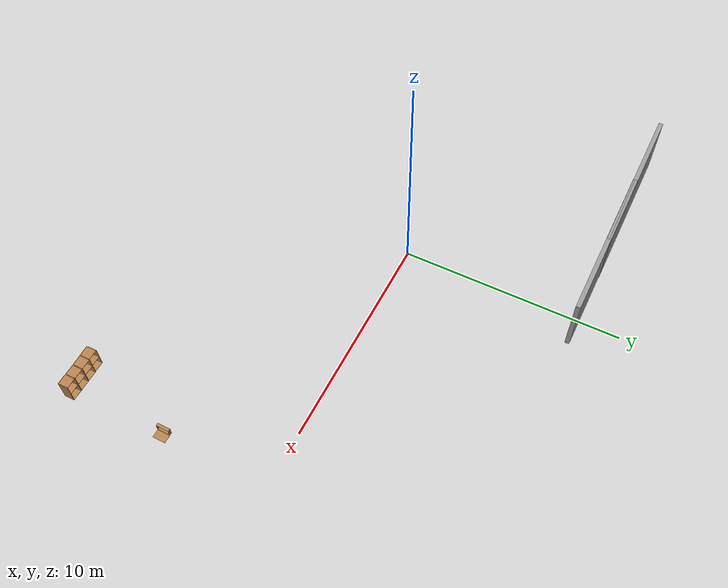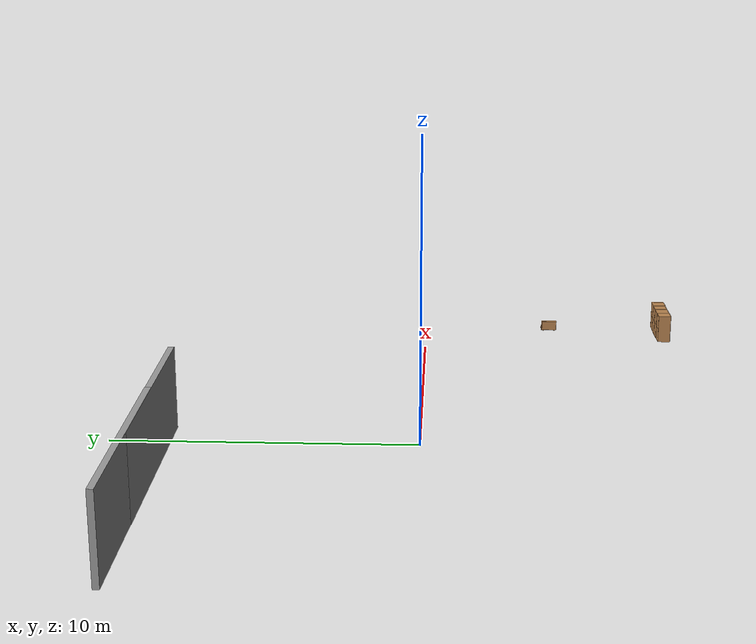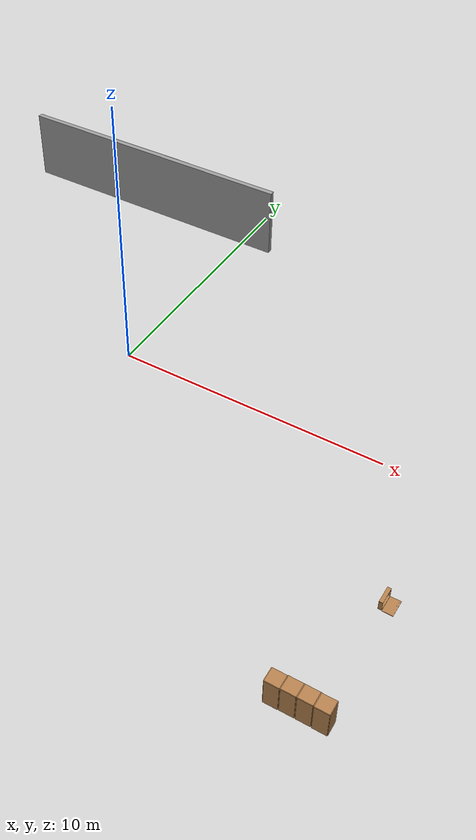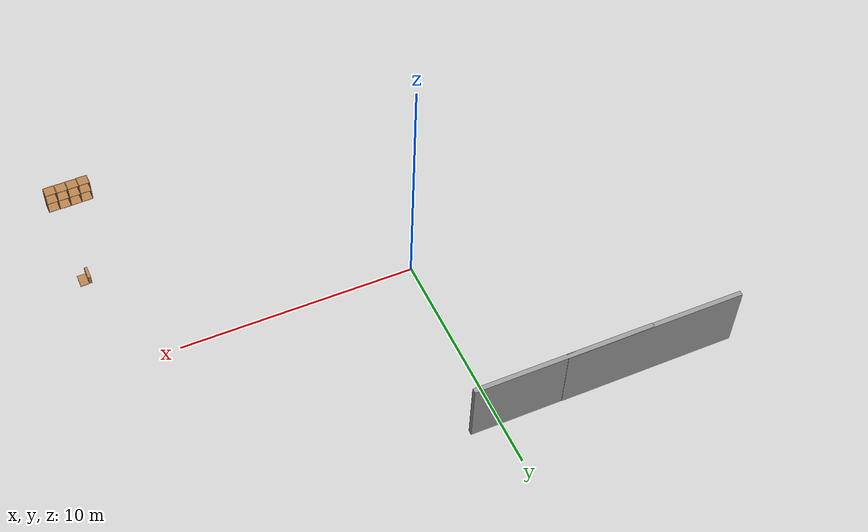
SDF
<sdf version="1.7">
 <world name="factory">
  <model name="deletion_wall">
   <static>1</static>
   <link name="sensing_link">
    <gravity>0</gravity>
    <sensor name="object_disposal_contact" type="contact">
     <update_rate>10</update_rate>
     <contact><collision>collision</collision><topic>__default_topic__</topic></contact>
    </sensor>
    <collision name="collision"><geometry><box><size>0.1 1 1</size></box></geometry></collision>
    <visual name="visual">
     <geometry><box><size>0.1 1 1</size></box></geometry>
     <cast_shadows>0</cast_shadows>
     <transparency>100</transparency>
    </visual>
   </link>
   <plugin name="object_disposal_plugin" filename="libObjectDisposalPlugin.so">
    <contact_sensor_name>object_disposal_contact</contact_sensor_name>
    <contact_side_normal>1 0 0</contact_side_normal>
    <disposal_pose>30 30 0 0 0 0</disposal_pose>
    <update_rate>5</update_rate>
   </plugin>
   <pose>0.199032 -1.08981 0 0 -0 0</pose>
  </model>
  <model name="drone_collection_zone">
   <static>1</static>
   <link name="sensing_link">
    <gravity>0</gravity>
    <sensor name="object_disposal_contact" type="contact">
     <update_rate>10</update_rate>
     <contact><collision>collision</collision><topic>__default_topic__</topic></contact>
    </sensor>
    <collision name="collision"><geometry><box><size>0.1 2 2</size></box></geometry></collision>
   </link>
   <plugin name="object_disposal_plugin" filename="libObjectDisposalPlugin.so">
    <contact_sensor_name>object_disposal_contact</contact_sensor_name>
    <contacting_box_topic>/ariac/waiting_shipping_box</contacting_box_topic>
    <activation_topic>/ariac/drone_collection_zone/activate_deletion</activation_topic>
    <contact_side_normal>1 0 0</contact_side_normal>
    <disposal_pose>-7.5 -10 -0.5 0 0 0</disposal_pose>
    <update_rate>5</update_rate>
   </plugin>
   <pose>-0.093674 -2.00167 0 0 -0 0</pose>
  </model>
  <model name="grey_wall">
   <static>1</static>
   <link name="link">
    <pose>0 0 1.4 0 -0 0</pose>
    <collision name="collision"><geometry><box><size>7.5 0.2 2.8</size></box></geometry></collision>
    <visual name="visual">
     <cast_shadows>0</cast_shadows>
     <geometry><box><size>7.5 0.2 2.8</size></box></geometry>
     <material>
      <script>
       <uri>model://grey_wall/materials/scripts</uri>
       <uri>model://grey_wall/materials/textures</uri>
       <name>vrc/grey_wall</name>
      </script>
     </material>
    </visual>
   </link>
   <static>1</static>
   <pose>-6.34942 8.1136 0 0 -0 0</pose>
  </model>
  <model name="grey_wall_clone">
   <static>1</static>
   <link name="link">
    <pose>0 0 1.4 0 -0 0</pose>
    <collision name="collision"><geometry><box><size>7.5 0.2 2.8</size></box></geometry></collision>
    <visual name="visual">
     <cast_shadows>0</cast_shadows>
     <geometry><box><size>7.5 0.2 2.8</size></box></geometry>
     <material>
      <script>
       <uri>model://grey_wall/materials/scripts</uri>
       <uri>model://grey_wall/materials/textures</uri>
       <name>vrc/grey_wall</name>
      </script>
     </material>
    </visual>
   </link>
   <static>1</static>
   <pose>-2.50623 8.09985 0 0 -0 0</pose>
  </model>
  <model name="cabinet_clone">
   <static>1</static>
   <link name="cabinet_bottom_plate">
    <inertial>
     <pose>0 0 -1 0 -0 0</pose>
     <inertia><ixx>2.05</ixx><ixy>0</ixy><ixz>0</ixz><iyy>2.05</iyy><iyz>0</iyz><izz>2.05</izz></inertia>
     <mass>25</mass>
    </inertial>
    <collision name="cabinet_bottom_plate_geom">
     <pose>0 0 0.01 0 -0 0</pose>
     <geometry><box><size>0.45 0.45 0.02</size></box></geometry>
    </collision>
    <visual name="cabinet_bottom_plate_geom_visual">
     <pose>0 0 0.01 0 -0 0</pose>
     <geometry><box><size>0.45 0.45 0.02</size></box></geometry>
     <material>
      <script>
       <uri>file:///usr/share/gazebo-11/media/materials/scripts/gazebo.material</uri>
       <name>Gazebo/Wood</name>
      </script>
     </material>
    </visual>
    <collision name="cabinet_bottom_plate_geom_cabinet_back_plate">
     <pose>0.235 0 0.51 0 -0 0</pose>
     <geometry><box><size>0.02 0.45 1.02</size></box></geometry>
    </collision>
    <visual name="cabinet_bottom_plate_geom_cabinet_back_plate_visual">
     <pose>0.235 0 0.51 0 -0 0</pose>
     <geometry><box><size>0.02 0.45 1.02</size></box></geometry>
     <material>
      <script>
       <uri>file:///usr/share/gazebo-11/media/materials/scripts/gazebo.material</uri>
       <name>Gazebo/Wood</name>
      </script>
     </material>
    </visual>
    <collision name="cabinet_bottom_plate_geom_cabinet_left_plate">
     <pose>0 0.235 0.51 0 -0 0</pose>
     <geometry><box><size>0.45 0.02 1.02</size></box></geometry>
    </collision>
    <visual name="cabinet_bottom_plate_geom_cabinet_left_plate_visual">
     <pose>0 0.235 0.51 0 -0 0</pose>
     <geometry><box><size>0.45 0.02 1.02</size></box></geometry>
     <material>
      <script>
       <uri>file:///usr/share/gazebo-11/media/materials/scripts/gazebo.material</uri>
       <name>Gazebo/Wood</name>
      </script>
     </material>
    </visual>
    <collision name="cabinet_bottom_plate_geom_cabinet_middle_plate">
     <pose>0 0 0.51 0 -0 0</pose>
     <geometry><box><size>0.45 0.45 0.02</size></box></geometry>
    </collision>
    <visual name="cabinet_bottom_plate_geom_cabinet_middle_plate_visual">
     <pose>0 0 0.51 0 -0 0</pose>
     <geometry><box><size>0.45 0.45 0.02</size></box></geometry>
     <material>
      <script>
       <uri>file:///usr/share/gazebo-11/media/materials/scripts/gazebo.material</uri>
       <name>Gazebo/Wood</name>
      </script>
     </material>
    </visual>
    <collision name="cabinet_bottom_plate_geom_cabinet_right_plate">
     <pose>0 -0.235 0.51 0 -0 0</pose>
     <geometry><box><size>0.45 0.02 1.02</size></box></geometry>
    </collision>
    <visual name="cabinet_bottom_plate_geom_cabinet_right_plate_visual">
     <pose>0 -0.235 0.51 0 -0 0</pose>
     <geometry><box><size>0.45 0.02 1.02</size></box></geometry>
     <material>
      <script>
       <uri>file:///usr/share/gazebo-11/media/materials/scripts/gazebo.material</uri>
       <name>Gazebo/Wood</name>
      </script>
     </material>
    </visual>
    <collision name="cabinet_bottom_plate_geom_cabinet_top_plate">
     <pose>0 0 1.01 0 -0 0</pose>
     <geometry><box><size>0.45 0.45 0.02</size></box></geometry>
    </collision>
    <visual name="cabinet_bottom_plate_geom_cabinet_top_plate_visual">
     <pose>0 0 1.01 0 -0 0</pose>
     <geometry><box><size>0.45 0.45 0.02</size></box></geometry>
     <material>
      <script>
       <uri>file:///usr/share/gazebo-11/media/materials/scripts/gazebo.material</uri>
       <name>Gazebo/Wood</name>
      </script>
     </material>
    </visual>
   </link>
   <static>1</static>
   <pose>12.5585 -9.14446 0.037072 0 0 -1.55676</pose>
  </model>
  <model name="cabinet_clone_0">
   <static>1</static>
   <link name="cabinet_bottom_plate">
    <inertial>
     <pose>0 0 -1 0 -0 0</pose>
     <inertia><ixx>2.05</ixx><ixy>0</ixy><ixz>0</ixz><iyy>2.05</iyy><iyz>0</iyz><izz>2.05</izz></inertia>
     <mass>25</mass>
    </inertial>
    <collision name="cabinet_bottom_plate_geom">
     <pose>0 0 0.01 0 -0 0</pose>
     <geometry><box><size>0.45 0.45 0.02</size></box></geometry>
    </collision>
    <visual name="cabinet_bottom_plate_geom_visual">
     <pose>0 0 0.01 0 -0 0</pose>
     <geometry><box><size>0.45 0.45 0.02</size></box></geometry>
     <material>
      <script>
       <uri>file:///usr/share/gazebo-11/media/materials/scripts/gazebo.material</uri>
       <name>Gazebo/Wood</name>
      </script>
     </material>
    </visual>
    <collision name="cabinet_bottom_plate_geom_cabinet_back_plate">
     <pose>0.235 0 0.51 0 -0 0</pose>
     <geometry><box><size>0.02 0.45 1.02</size></box></geometry>
    </collision>
    <visual name="cabinet_bottom_plate_geom_cabinet_back_plate_visual">
     <pose>0.235 0 0.51 0 -0 0</pose>
     <geometry><box><size>0.02 0.45 1.02</size></box></geometry>
     <material>
      <script>
       <uri>file:///usr/share/gazebo-11/media/materials/scripts/gazebo.material</uri>
       <name>Gazebo/Wood</name>
      </script>
     </material>
    </visual>
    <collision name="cabinet_bottom_plate_geom_cabinet_left_plate">
     <pose>0 0.235 0.51 0 -0 0</pose>
     <geometry><box><size>0.45 0.02 1.02</size></box></geometry>
    </collision>
    <visual name="cabinet_bottom_plate_geom_cabinet_left_plate_visual">
     <pose>0 0.235 0.51 0 -0 0</pose>
     <geometry><box><size>0.45 0.02 1.02</size></box></geometry>
     <material>
      <script>
       <uri>file:///usr/share/gazebo-11/media/materials/scripts/gazebo.material</uri>
       <name>Gazebo/Wood</name>
      </script>
     </material>
    </visual>
    <collision name="cabinet_bottom_plate_geom_cabinet_middle_plate">
     <pose>0 0 0.51 0 -0 0</pose>
     <geometry><box><size>0.45 0.45 0.02</size></box></geometry>
    </collision>
    <visual name="cabinet_bottom_plate_geom_cabinet_middle_plate_visual">
     <pose>0 0 0.51 0 -0 0</pose>
     <geometry><box><size>0.45 0.45 0.02</size></box></geometry>
     <material>
      <script>
       <uri>file:///usr/share/gazebo-11/media/materials/scripts/gazebo.material</uri>
       <name>Gazebo/Wood</name>
      </script>
     </material>
    </visual>
    <collision name="cabinet_bottom_plate_geom_cabinet_right_plate">
     <pose>0 -0.235 0.51 0 -0 0</pose>
     <geometry><box><size>0.45 0.02 1.02</size></box></geometry>
    </collision>
    <visual name="cabinet_bottom_plate_geom_cabinet_right_plate_visual">
     <pose>0 -0.235 0.51 0 -0 0</pose>
     <geometry><box><size>0.45 0.02 1.02</size></box></geometry>
     <material>
      <script>
       <uri>file:///usr/share/gazebo-11/media/materials/scripts/gazebo.material</uri>
       <name>Gazebo/Wood</name>
      </script>
     </material>
    </visual>
    <collision name="cabinet_bottom_plate_geom_cabinet_top_plate">
     <pose>0 0 1.01 0 -0 0</pose>
     <geometry><box><size>0.45 0.45 0.02</size></box></geometry>
    </collision>
    <visual name="cabinet_bottom_plate_geom_cabinet_top_plate_visual">
     <pose>0 0 1.01 0 -0 0</pose>
     <geometry><box><size>0.45 0.45 0.02</size></box></geometry>
     <material>
      <script>
       <uri>file:///usr/share/gazebo-11/media/materials/scripts/gazebo.material</uri>
       <name>Gazebo/Wood</name>
      </script>
     </material>
    </visual>
   </link>
   <static>1</static>
   <pose>12.0748 -9.14339 0.037072 0 0 -1.55676</pose>
  </model>
  <model name="cabinet_clone_1">
   <static>1</static>
   <link name="cabinet_bottom_plate">
    <inertial>
     <pose>0 0 -1 0 -0 0</pose>
     <inertia><ixx>2.05</ixx><ixy>0</ixy><ixz>0</ixz><iyy>2.05</iyy><iyz>0</iyz><izz>2.05</izz></inertia>
     <mass>25</mass>
    </inertial>
    <collision name="cabinet_bottom_plate_geom">
     <pose>0 0 0.01 0 -0 0</pose>
     <geometry><box><size>0.45 0.45 0.02</size></box></geometry>
    </collision>
    <visual name="cabinet_bottom_plate_geom_visual">
     <pose>0 0 0.01 0 -0 0</pose>
     <geometry><box><size>0.45 0.45 0.02</size></box></geometry>
     <material>
      <script>
       <uri>file:///usr/share/gazebo-11/media/materials/scripts/gazebo.material</uri>
       <name>Gazebo/Wood</name>
      </script>
     </material>
    </visual>
    <collision name="cabinet_bottom_plate_geom_cabinet_back_plate">
     <pose>0.235 0 0.51 0 -0 0</pose>
     <geometry><box><size>0.02 0.45 1.02</size></box></geometry>
    </collision>
    <visual name="cabinet_bottom_plate_geom_cabinet_back_plate_visual">
     <pose>0.235 0 0.51 0 -0 0</pose>
     <geometry><box><size>0.02 0.45 1.02</size></box></geometry>
     <material>
      <script>
       <uri>file:///usr/share/gazebo-11/media/materials/scripts/gazebo.material</uri>
       <name>Gazebo/Wood</name>
      </script>
     </material>
    </visual>
    <collision name="cabinet_bottom_plate_geom_cabinet_left_plate">
     <pose>0 0.235 0.51 0 -0 0</pose>
     <geometry><box><size>0.45 0.02 1.02</size></box></geometry>
    </collision>
    <visual name="cabinet_bottom_plate_geom_cabinet_left_plate_visual">
     <pose>0 0.235 0.51 0 -0 0</pose>
     <geometry><box><size>0.45 0.02 1.02</size></box></geometry>
     <material>
      <script>
       <uri>file:///usr/share/gazebo-11/media/materials/scripts/gazebo.material</uri>
       <name>Gazebo/Wood</name>
      </script>
     </material>
    </visual>
    <collision name="cabinet_bottom_plate_geom_cabinet_middle_plate">
     <pose>0 0 0.51 0 -0 0</pose>
     <geometry><box><size>0.45 0.45 0.02</size></box></geometry>
    </collision>
    <visual name="cabinet_bottom_plate_geom_cabinet_middle_plate_visual">
     <pose>0 0 0.51 0 -0 0</pose>
     <geometry><box><size>0.45 0.45 0.02</size></box></geometry>
     <material>
      <script>
       <uri>file:///usr/share/gazebo-11/media/materials/scripts/gazebo.material</uri>
       <name>Gazebo/Wood</name>
      </script>
     </material>
    </visual>
    <collision name="cabinet_bottom_plate_geom_cabinet_right_plate">
     <pose>0 -0.235 0.51 0 -0 0</pose>
     <geometry><box><size>0.45 0.02 1.02</size></box></geometry>
    </collision>
    <visual name="cabinet_bottom_plate_geom_cabinet_right_plate_visual">
     <pose>0 -0.235 0.51 0 -0 0</pose>
     <geometry><box><size>0.45 0.02 1.02</size></box></geometry>
     <material>
      <script>
       <uri>file:///usr/share/gazebo-11/media/materials/scripts/gazebo.material</uri>
       <name>Gazebo/Wood</name>
      </script>
     </material>
    </visual>
    <collision name="cabinet_bottom_plate_geom_cabinet_top_plate">
     <pose>0 0 1.01 0 -0 0</pose>
     <geometry><box><size>0.45 0.45 0.02</size></box></geometry>
    </collision>
    <visual name="cabinet_bottom_plate_geom_cabinet_top_plate_visual">
     <pose>0 0 1.01 0 -0 0</pose>
     <geometry><box><size>0.45 0.45 0.02</size></box></geometry>
     <material>
      <script>
       <uri>file:///usr/share/gazebo-11/media/materials/scripts/gazebo.material</uri>
       <name>Gazebo/Wood</name>
      </script>
     </material>
    </visual>
   </link>
   <static>1</static>
   <pose>11.5886 -9.15198 0.037072 0 0 -1.55676</pose>
  </model>
  <model name="cabinet_clone_2">
   <static>1</static>
   <link name="cabinet_bottom_plate">
    <inertial>
     <pose>0 0 -1 0 -0 0</pose>
     <inertia><ixx>2.05</ixx><ixy>0</ixy><ixz>0</ixz><iyy>2.05</iyy><iyz>0</iyz><izz>2.05</izz></inertia>
     <mass>25</mass>
    </inertial>
    <collision name="cabinet_bottom_plate_geom">
     <pose>0 0 0.01 0 -0 0</pose>
     <geometry><box><size>0.45 0.45 0.02</size></box></geometry>
    </collision>
    <visual name="cabinet_bottom_plate_geom_visual">
     <pose>0 0 0.01 0 -0 0</pose>
     <geometry><box><size>0.45 0.45 0.02</size></box></geometry>
     <material>
      <script>
       <uri>file:///usr/share/gazebo-11/media/materials/scripts/gazebo.material</uri>
       <name>Gazebo/Wood</name>
      </script>
     </material>
    </visual>
    <collision name="cabinet_bottom_plate_geom_cabinet_back_plate">
     <pose>0.235 0 0.51 0 -0 0</pose>
     <geometry><box><size>0.02 0.45 1.02</size></box></geometry>
    </collision>
    <visual name="cabinet_bottom_plate_geom_cabinet_back_plate_visual">
     <pose>0.235 0 0.51 0 -0 0</pose>
     <geometry><box><size>0.02 0.45 1.02</size></box></geometry>
     <material>
      <script>
       <uri>file:///usr/share/gazebo-11/media/materials/scripts/gazebo.material</uri>
       <name>Gazebo/Wood</name>
      </script>
     </material>
    </visual>
    <collision name="cabinet_bottom_plate_geom_cabinet_left_plate">
     <pose>0 0.235 0.51 0 -0 0</pose>
     <geometry><box><size>0.45 0.02 1.02</size></box></geometry>
    </collision>
    <visual name="cabinet_bottom_plate_geom_cabinet_left_plate_visual">
     <pose>0 0.235 0.51 0 -0 0</pose>
     <geometry><box><size>0.45 0.02 1.02</size></box></geometry>
     <material>
      <script>
       <uri>file:///usr/share/gazebo-11/media/materials/scripts/gazebo.material</uri>
       <name>Gazebo/Wood</name>
      </script>
     </material>
    </visual>
    <collision name="cabinet_bottom_plate_geom_cabinet_middle_plate">
     <pose>0 0 0.51 0 -0 0</pose>
     <geometry><box><size>0.45 0.45 0.02</size></box></geometry>
    </collision>
    <visual name="cabinet_bottom_plate_geom_cabinet_middle_plate_visual">
     <pose>0 0 0.51 0 -0 0</pose>
     <geometry><box><size>0.45 0.45 0.02</size></box></geometry>
     <material>
      <script>
       <uri>file:///usr/share/gazebo-11/media/materials/scripts/gazebo.material</uri>
       <name>Gazebo/Wood</name>
      </script>
     </material>
    </visual>
    <collision name="cabinet_bottom_plate_geom_cabinet_right_plate">
     <pose>0 -0.235 0.51 0 -0 0</pose>
     <geometry><box><size>0.45 0.02 1.02</size></box></geometry>
    </collision>
    <visual name="cabinet_bottom_plate_geom_cabinet_right_plate_visual">
     <pose>0 -0.235 0.51 0 -0 0</pose>
     <geometry><box><size>0.45 0.02 1.02</size></box></geometry>
     <material>
      <script>
       <uri>file:///usr/share/gazebo-11/media/materials/scripts/gazebo.material</uri>
       <name>Gazebo/Wood</name>
      </script>
     </material>
    </visual>
    <collision name="cabinet_bottom_plate_geom_cabinet_top_plate">
     <pose>0 0 1.01 0 -0 0</pose>
     <geometry><box><size>0.45 0.45 0.02</size></box></geometry>
    </collision>
    <visual name="cabinet_bottom_plate_geom_cabinet_top_plate_visual">
     <pose>0 0 1.01 0 -0 0</pose>
     <geometry><box><size>0.45 0.45 0.02</size></box></geometry>
     <material>
      <script>
       <uri>file:///usr/share/gazebo-11/media/materials/scripts/gazebo.material</uri>
       <name>Gazebo/Wood</name>
      </script>
     </material>
    </visual>
   </link>
   <static>1</static>
   <pose>11.1088 -9.16946 0.037072 0 0 -1.55676</pose>
  </model>
  <model name="wooden_case_clone">
   <link name="base">
    <pose>0 0 0.024 0 -0 0</pose>
    <inertial>
     <pose>-0.022184 0 0.171592 0 -0 0</pose>
     <mass>3.96264</mass>
     <inertia>
      <ixx>0.213536</ixx>
      <ixy>0</ixy>
      <ixz>0.000779377</ixz>
      <iyy>0.0708943</iyy>
      <iyz>0</iyz>
      <izz>0.154604</izz>
     </inertia>
    </inertial>
    <collision name="collision_back">
     <pose>-0.053975 0 0.1778 0 -0 0</pose>
     <geometry><box><size>0.01905 0.5461 0.3175</size></box></geometry>
     <surface>
      <contact>
       <poissons_ratio>0.347</poissons_ratio>
       <elastic_modulus>8.8e+09</elastic_modulus>
       <ode><kp>100000</kp><kd>100</kd><max_vel>100</max_vel><min_depth>0.001</min_depth></ode>
      </contact>
      <friction>
       <torsional>
        <coefficient>1</coefficient>
        <use_patch_radius>0</use_patch_radius>
        <surface_radius>0.01</surface_radius>
       </torsional>
      </friction>
     </surface>
    </collision>
    <visual name="visual_back">
     <pose>-0.053975 0 0.1778 0 -0 0</pose>
     <geometry><box><size>0.01905 0.5461 0.3175</size></box></geometry>
     <material>
      <script>
       <uri>file:///usr/share/gazebo-11/media/materials/scripts/gazebo.material</uri>
       <name>Gazebo/Wood</name>
      </script>
     </material>
    </visual>
    <collision name="collision_bottom">
     <pose>0 0 0.009525 0 -0 0</pose>
     <geometry><box><size>0.127 0.5842 0.01905</size></box></geometry>
     <surface>
      <contact>
       <poissons_ratio>0.347</poissons_ratio>
       <elastic_modulus>8.8e+09</elastic_modulus>
       <ode><kp>100000</kp><kd>100</kd><max_vel>100</max_vel><min_depth>0.001</min_depth></ode>
      </contact>
      <friction>
       <torsional>
        <coefficient>1</coefficient>
        <use_patch_radius>0</use_patch_radius>
        <surface_radius>0.01</surface_radius>
       </torsional>
      </friction>
     </surface>
    </collision>
    <visual name="visual_bottom">
     <pose>0 0 0.009525 0 -0 0</pose>
     <geometry><box><size>0.127 0.5842 0.01905</size></box></geometry>
     <material>
      <script>
       <uri>file:///usr/share/gazebo-11/media/materials/scripts/gazebo.material</uri>
       <name>Gazebo/Wood</name>
      </script>
     </material>
    </visual>
    <collision name="collision_top">
     <pose>0 0 0.346075 0 -0 0</pose>
     <geometry><box><size>0.127 0.5842 0.01905</size></box></geometry>
     <surface>
      <contact>
       <poissons_ratio>0.347</poissons_ratio>
       <elastic_modulus>8.8e+09</elastic_modulus>
       <ode><kp>100000</kp><kd>100</kd><max_vel>100</max_vel><min_depth>0.001</min_depth></ode>
      </contact>
      <friction>
       <torsional>
        <coefficient>1</coefficient>
        <use_patch_radius>0</use_patch_radius>
        <surface_radius>0.01</surface_radius>
       </torsional>
      </friction>
     </surface>
    </collision>
    <visual name="visual_top">
     <pose>0 0 0.346075 0 -0 0</pose>
     <geometry><box><size>0.127 0.5842 0.01905</size></box></geometry>
     <material>
      <script>
       <uri>file:///usr/share/gazebo-11/media/materials/scripts/gazebo.material</uri>
       <name>Gazebo/Wood</name>
      </script>
     </material>
    </visual>
    <collision name="collision_left">
     <pose>0 -0.282575 0.1778 0 -0 0</pose>
     <geometry><box><size>0.127 0.01905 0.3175</size></box></geometry>
     <surface>
      <contact>
       <poissons_ratio>0.347</poissons_ratio>
       <elastic_modulus>8.8e+09</elastic_modulus>
       <ode><kp>100000</kp><kd>100</kd><max_vel>100</max_vel><min_depth>0.001</min_depth></ode>
      </contact>
      <friction>
       <torsional>
        <coefficient>1</coefficient>
        <use_patch_radius>0</use_patch_radius>
        <surface_radius>0.01</surface_radius>
       </torsional>
      </friction>
     </surface>
    </collision>
    <visual name="visual_left">
     <pose>0 -0.282575 0.1778 0 -0 0</pose>
     <geometry><box><size>0.127 0.01905 0.3175</size></box></geometry>
     <material>
      <script>
       <uri>file:///usr/share/gazebo-11/media/materials/scripts/gazebo.material</uri>
       <name>Gazebo/Wood</name>
      </script>
     </material>
    </visual>
    <collision name="collision_right">
     <pose>0 0.282575 0.1778 0 -0 0</pose>
     <geometry><box><size>0.127 0.01905 0.3175</size></box></geometry>
     <surface>
      <contact>
       <poissons_ratio>0.347</poissons_ratio>
       <elastic_modulus>8.8e+09</elastic_modulus>
       <ode><kp>100000</kp><kd>100</kd><max_vel>100</max_vel><min_depth>0.001</min_depth></ode>
      </contact>
      <friction>
       <torsional>
        <coefficient>1</coefficient>
        <use_patch_radius>0</use_patch_radius>
        <surface_radius>0.01</surface_radius>
       </torsional>
      </friction>
     </surface>
    </collision>
    <visual name="visual_right">
     <pose>0 0.282575 0.1778 0 -0 0</pose>
     <geometry><box><size>0.127 0.01905 0.3175</size></box></geometry>
     <material>
      <script>
       <uri>file:///usr/share/gazebo-11/media/materials/scripts/gazebo.material</uri>
       <name>Gazebo/Wood</name>
      </script>
     </material>
    </visual>
    <collision name="collision_block_left">
     <pose>0.0095 -0.2151 -0.012 0 -0 0</pose>
     <geometry><box><size>0.108 0.05 0.024</size></box></geometry>
     <surface>
      <contact>
       <poissons_ratio>0.347</poissons_ratio>
       <elastic_modulus>8.8e+09</elastic_modulus>
       <ode><kp>100000</kp><kd>100</kd><max_vel>100</max_vel><min_depth>0.001</min_depth></ode>
      </contact>
      <friction>
       <torsional>
        <coefficient>1</coefficient>
        <use_patch_radius>0</use_patch_radius>
        <surface_radius>0.01</surface_radius>
       </torsional>
      </friction>
     </surface>
    </collision>
    <visual name="visual_block_left">
     <pose>0.0095 -0.2151 -0.012 0 -0 0</pose>
     <geometry><box><size>0.108 0.05 0.024</size></box></geometry>
     <material>
      <script>
       <uri>file:///usr/share/gazebo-11/media/materials/scripts/gazebo.material</uri>
       <name>Gazebo/Wood</name>
      </script>
     </material>
    </visual>
    <collision name="collision_block_right">
     <pose>0.0095 0.2151 -0.012 0 -0 0</pose>
     <geometry><box><size>0.108 0.05 0.024</size></box></geometry>
     <surface>
      <contact>
       <poissons_ratio>0.347</poissons_ratio>
       <elastic_modulus>8.8e+09</elastic_modulus>
       <ode><kp>100000</kp><kd>100</kd><max_vel>100</max_vel><min_depth>0.001</min_depth></ode>
      </contact>
      <friction>
       <torsional>
        <coefficient>1</coefficient>
        <use_patch_radius>0</use_patch_radius>
        <surface_radius>0.01</surface_radius>
       </torsional>
      </friction>
     </surface>
    </collision>
    <visual name="visual_block_right">
     <pose>0.0095 0.2151 -0.012 0 -0 0</pose>
     <geometry><box><size>0.108 0.05 0.024</size></box></geometry>
     <material>
      <script>
       <uri>file:///usr/share/gazebo-11/media/materials/scripts/gazebo.material</uri>
       <name>Gazebo/Wood</name>
      </script>
     </material>
    </visual>
   </link>
   <link name="lid">
    <pose>0.243775 0 0.009525 0 -0 0</pose>
    <inertial>
     <mass>1.97874</mass>
     <inertia>
      <ixx>0.0563367</ixx>
      <ixy>0</ixy>
      <ixz>0</ixz>
      <iyy>0.020911</iyy>
      <iyz>0</iyz>
      <izz>0.0771281</izz>
     </inertia>
    </inertial>
    <collision name="collision">
     <geometry><box><size>0.3556 0.5842 0.01905</size></box></geometry>
     <surface>
      <contact>
       <poissons_ratio>0.347</poissons_ratio>
       <elastic_modulus>8.8e+09</elastic_modulus>
       <ode><kp>100000</kp><kd>100</kd><max_vel>100</max_vel><min_depth>0.001</min_depth></ode>
      </contact>
      <friction>
       <torsional>
        <coefficient>1</coefficient>
        <use_patch_radius>0</use_patch_radius>
        <surface_radius>0.01</surface_radius>
       </torsional>
      </friction>
     </surface>
    </collision>
    <visual name="visual">
     <geometry><box><size>0.3556 0.5842 0.01905</size></box></geometry>
     <material>
      <script>
       <uri>file:///usr/share/gazebo-11/media/materials/scripts/gazebo.material</uri>
       <name>Gazebo/Wood</name>
      </script>
     </material>
    </visual>
    <visual name="tee_nut_1">
     <pose>0.122 -0.216 0 0 -0 0</pose>
     <geometry><cylinder><radius>0.00635</radius><length>0.0192405</length></cylinder></geometry>
     <material>
      <script>
       <uri>file:///usr/share/gazebo-11/media/materials/scripts/gazebo.material</uri>
       <name>Gazebo/Grey</name>
      </script>
     </material>
    </visual>
    <visual name="tee_nut_2">
     <pose>0.122 -0.088 0 0 -0 0</pose>
     <geometry><cylinder><radius>0.00635</radius><length>0.0192405</length></cylinder></geometry>
     <material>
      <script>
       <uri>file:///usr/share/gazebo-11/media/materials/scripts/gazebo.material</uri>
       <name>Gazebo/Grey</name>
      </script>
     </material>
    </visual>
    <visual name="tee_nut_3">
     <pose>0.122 0.088 0 0 -0 0</pose>
     <geometry><cylinder><radius>0.00635</radius><length>0.0192405</length></cylinder></geometry>
     <material>
      <script>
       <uri>file:///usr/share/gazebo-11/media/materials/scripts/gazebo.material</uri>
       <name>Gazebo/Grey</name>
      </script>
     </material>
    </visual>
    <visual name="tee_nut_4">
     <pose>0.122 0.216 0 0 -0 0</pose>
     <geometry><cylinder><radius>0.00635</radius><length>0.0192405</length></cylinder></geometry>
     <material>
      <script>
       <uri>file:///usr/share/gazebo-11/media/materials/scripts/gazebo.material</uri>
       <name>Gazebo/Grey</name>
      </script>
     </material>
    </visual>
   </link>
   <joint name="lid_hinge" type="revolute">
    <pose>-0.1778 0 0.01905 0 -0 0</pose>
    <parent>base</parent>
    <child>lid</child>
    <axis>
     <xyz>0 1 0</xyz>
     <limit><upper>0.523599</upper><lower>-1.5708</lower></limit>
     <dynamics><spring_reference>0</spring_reference><spring_stiffness>0</spring_stiffness></dynamics>
    </axis>
   </joint>
   <pose>12.2927 -4.84304 -0.001057 -0 -0.000433 -1e-06</pose>
  </model>
 </world>
</sdf>
